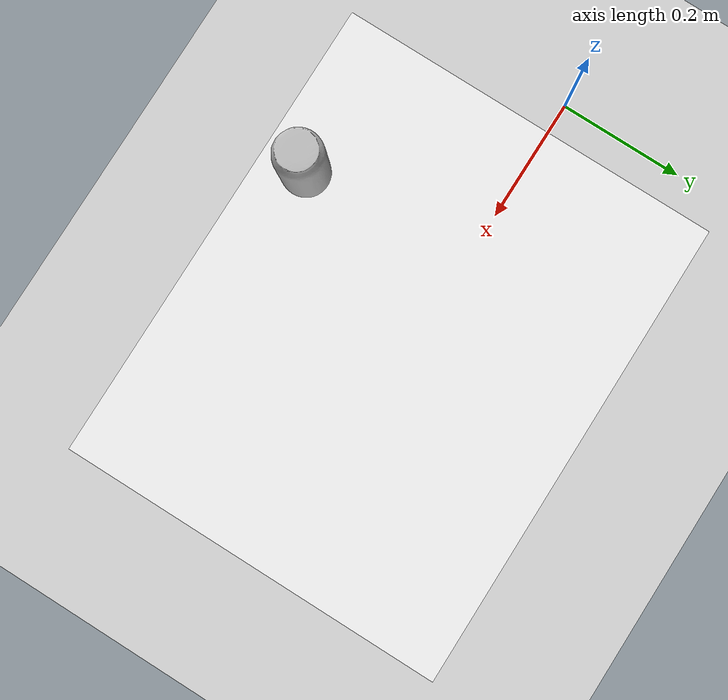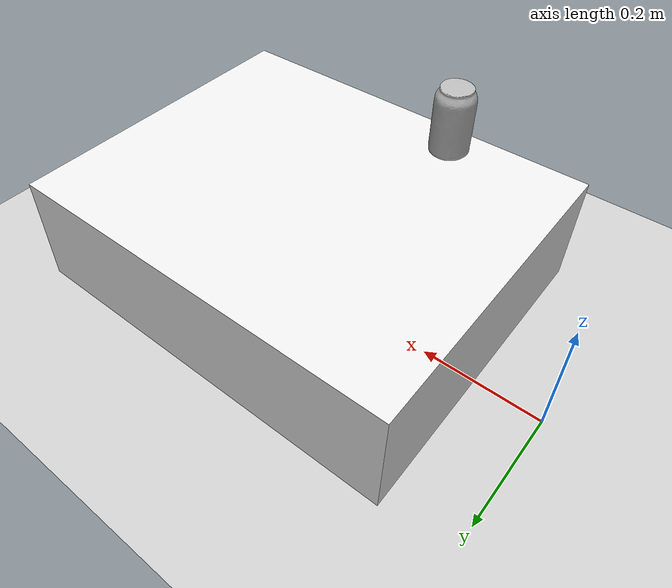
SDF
<sdf version="1.7">
 <world name="default">
  <light name="sun" type="directional">
   <pose>0 0 10 0 -0 0</pose>
   <diffuse>0.8 0.8 0.8 1</diffuse>
   <specular>0.2 0.2 0.2 1</specular>
   <attenuation>
    <range>1000</range>
    <constant>0.9</constant>
    <linear>0.01</linear>
    <quadratic>0.001</quadratic>
   </attenuation>
   <direction>-0.5 0.1 -0.9</direction>
   <spot><inner_angle>0</inner_angle><outer_angle>0</outer_angle><falloff>0</falloff></spot>
  </light>
  <model name="ground_plane">
   <static>1</static>
   <link name="link">
    <collision name="collision">
     <geometry><plane><normal>0 0 1</normal><size>100 100</size></plane></geometry>
     <surface>
      <contact><collide_bitmask>65535</collide_bitmask></contact>
      <friction><ode><mu>100</mu><mu2>50</mu2></ode></friction>
     </surface>
    </collision>
    <visual name="visual">
     <cast_shadows>0</cast_shadows>
     <geometry><plane><normal>0 0 1</normal><size>100 100</size></plane></geometry>
     <material>
      <script><uri>file://media/materials/scripts/gazebo.material</uri><name>Gazebo/Grey</name></script>
     </material>
    </visual>
   </link>
  </model>
  <gravity>0 0 -9.8</gravity>
  <magnetic_field>6e-06 2.3e-05 -4.2e-05</magnetic_field>
  <atmosphere type="adiabatic"/>
  <physics type="ode">
   <max_step_size>0.001</max_step_size>
   <real_time_factor>1</real_time_factor>
   <real_time_update_rate>1000</real_time_update_rate>
  </physics>
  <scene><ambient>0.4 0.4 0.4 1</ambient><background>0.7 0.7 0.7 1</background><shadows>1</shadows></scene>
  <audio><device>default</device></audio>
  <spherical_coordinates>
   <surface_model>EARTH_WGS84</surface_model>
   <latitude_deg>0</latitude_deg>
   <longitude_deg>0</longitude_deg>
   <elevation>0</elevation>
   <heading_deg>0</heading_deg>
  </spherical_coordinates>
  <model name="unit_box">
   <pose>0.451859 -0.021936 0.097274 -3e-06 -1.2e-05 0.001913</pose>
   <link name="link">
    <inertial>
     <mass>1</mass>
     <inertia>
      <ixx>0.166667</ixx>
      <ixy>0</ixy>
      <ixz>0</ixz>
      <iyy>0.166667</iyy>
      <iyz>0</iyz>
      <izz>0.166667</izz>
     </inertia>
    </inertial>
    <collision name="collision">
     <geometry><box><size>0.681374 0.552971 0.194584</size></box></geometry>
    </collision>
    <visual name="visual">
     <geometry><box><size>0.681374 0.552971 0.194584</size></box></geometry>
     <material>
      <script><name>Gazebo/White</name><uri>file://media/materials/scripts/gazebo.material</uri></script>
     </material>
    </visual>
   </link>
  </model>
  <model name="coke_can">
   <link name="link">
    <inertial>
     <pose>0 0 0.06 0 -0 0</pose>
     <mass>0.39</mass>
     <inertia>
      <ixx>0.00055575</ixx>
      <ixy>0</ixy>
      <ixz>0</ixz>
      <iyy>0.00055575</iyy>
      <iyz>0</iyz>
      <izz>0.0001755</izz>
     </inertia>
    </inertial>
    <collision name="collision">
     <pose>0.003937 0.004724 -0.18 0 -0 0</pose>
     <geometry><mesh><uri>model://coke_can/meshes/coke_can.dae</uri></mesh></geometry>
     <surface>
      <friction><ode><mu>1</mu><mu2>1</mu2></ode></friction>
      <contact><ode><kp>1e+07</kp><kd>1</kd><min_depth>0.001</min_depth><max_vel>0.1</max_vel></ode></contact>
     </surface>
    </collision>
    <visual name="visual">
     <pose>0.003937 0.004724 -0.18 0 -0 0</pose>
     <geometry><mesh><uri>model://coke_can/meshes/coke_can.dae</uri></mesh></geometry>
    </visual>
   </link>
   <pose>0.328024 -0.231566 0.191998 -0.0112 0.004006 -0.058604</pose>
  </model>
 </world>
</sdf>
